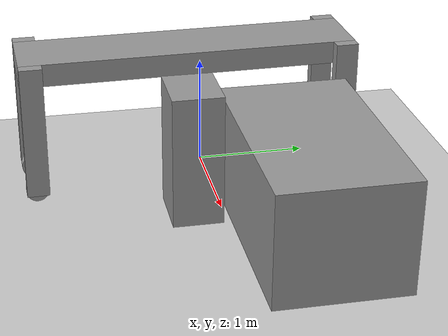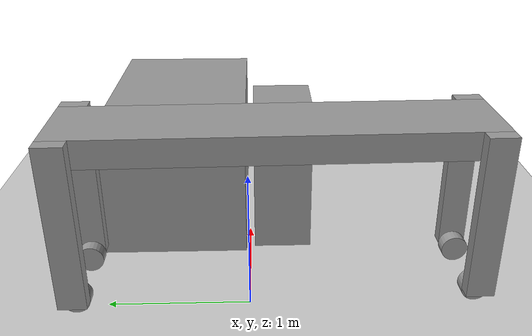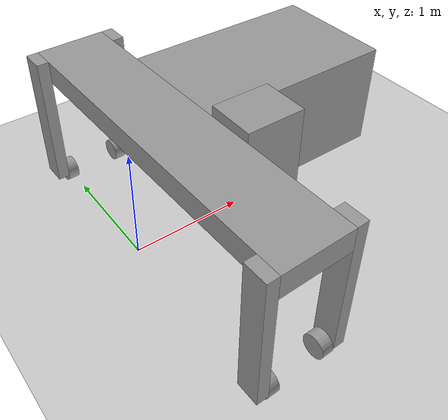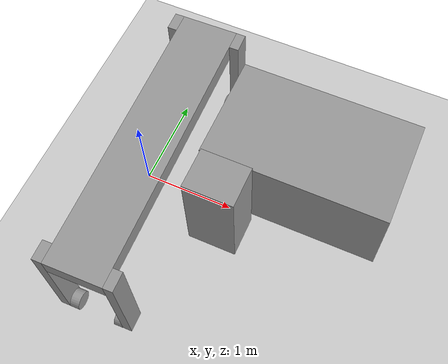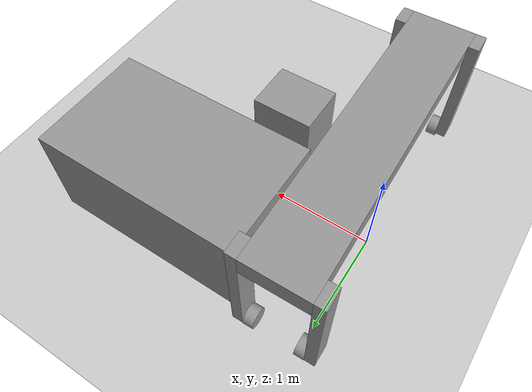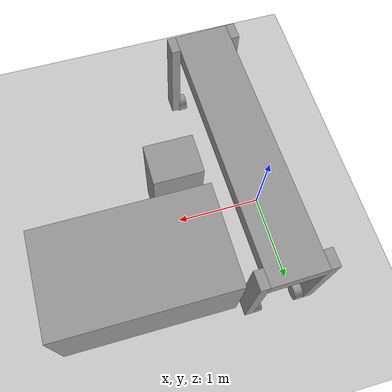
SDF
<sdf version="1.7">
 <world name="default">
  <model name="ground_plane">
   <static>1</static>
   <link name="link">
    <collision name="collision">
     <geometry><plane><normal>0 0 1</normal><size>100 100</size></plane></geometry>
     <surface>
      <contact><collide_bitmask>65535</collide_bitmask></contact>
      <friction><ode><mu>100</mu><mu2>50</mu2></ode></friction>
     </surface>
    </collision>
    <visual name="visual">
     <cast_shadows>0</cast_shadows>
     <geometry><plane><normal>0 0 1</normal><size>100 100</size></plane></geometry>
     <material>
      <script><uri>file://media/materials/scripts/gazebo.material</uri><name>Gazebo/Grey</name></script>
     </material>
    </visual>
   </link>
  </model>
  <model name="trolley">
   <link name="link_0">
    <inertial>
     <mass>1</mass>
     <inertia>
      <ixx>0.166667</ixx>
      <ixy>0</ixy>
      <ixz>0</ixz>
      <iyy>0.166667</iyy>
      <iyz>0</iyz>
      <izz>0.166667</izz>
     </inertia>
    </inertial>
    <pose>-0.120868 0.130124 0.533333 0 -0 0</pose>
    <visual name="visual">
     <geometry><box><size>0.6 3 0.2</size></box></geometry>
     <material>
      <lighting>1</lighting>
      <script><uri>file://media/materials/scripts/gazebo.material</uri><name>Gazebo/Grey</name></script>
      <shader type="pixel"><normal_map>__default__</normal_map></shader>
      <ambient>0.3 0.3 0.3 1</ambient>
      <diffuse>0.7 0.7 0.7 1</diffuse>
      <specular>0.01 0.01 0.01 1</specular>
      <emissive>0 0 0 1</emissive>
     </material>
    </visual>
    <collision name="collision">
     <geometry><box><size>0.6 3 0.2</size></box></geometry>
     <surface>
      <friction>
       <ode><mu>1</mu><mu2>1</mu2><fdir1>0 0 0</fdir1><slip1>0</slip1><slip2>0</slip2></ode>
       <torsional>
        <coefficient>1</coefficient>
        <patch_radius>0</patch_radius>
        <surface_radius>0</surface_radius>
        <use_patch_radius>1</use_patch_radius>
        <ode><slip>0</slip></ode>
       </torsional>
      </friction>
      <bounce><restitution_coefficient>0</restitution_coefficient><threshold>1e+06</threshold></bounce>
      <contact>
       <collide_without_contact>0</collide_without_contact>
       <collide_without_contact_bitmask>1</collide_without_contact_bitmask>
       <collide_bitmask>1</collide_bitmask>
       <ode>
        <soft_cfm>0</soft_cfm>
        <soft_erp>0.2</soft_erp>
        <kp>1e+13</kp>
        <kd>1</kd>
        <max_vel>0.01</max_vel>
        <min_depth>0</min_depth>
       </ode>
       <bullet>
        <split_impulse>1</split_impulse>
        <split_impulse_penetration_threshold>-0.01</split_impulse_penetration_threshold>
        <soft_cfm>0</soft_cfm>
        <soft_erp>0.2</soft_erp>
        <kp>1e+13</kp>
        <kd>1</kd>
       </bullet>
      </contact>
     </surface>
    </collision>
   </link>
   <link name="link_1">
    <inertial>
     <mass>1</mass>
     <inertia>
      <ixx>0.166667</ixx>
      <ixy>0</ixy>
      <ixz>0</ixz>
      <iyy>0.166667</iyy>
      <iyz>0</iyz>
      <izz>0.166667</izz>
     </inertia>
    </inertial>
    <pose>0.229136 -1.26987 0.033333 0 -0 0</pose>
    <visual name="visual">
     <geometry><box><size>0.1 0.2 1.2</size></box></geometry>
     <material>
      <lighting>1</lighting>
      <script><uri>file://media/materials/scripts/gazebo.material</uri><name>Gazebo/Grey</name></script>
      <shader type="pixel"><normal_map>__default__</normal_map></shader>
      <ambient>0.3 0.3 0.3 1</ambient>
      <diffuse>0.7 0.7 0.7 1</diffuse>
      <specular>0.01 0.01 0.01 1</specular>
      <emissive>0 0 0 1</emissive>
     </material>
    </visual>
    <collision name="collision">
     <geometry><box><size>0.1 0.2 1.2</size></box></geometry>
     <surface>
      <friction>
       <ode><mu>1</mu><mu2>1</mu2><fdir1>0 0 0</fdir1><slip1>0</slip1><slip2>0</slip2></ode>
       <torsional>
        <coefficient>1</coefficient>
        <patch_radius>0</patch_radius>
        <surface_radius>0</surface_radius>
        <use_patch_radius>1</use_patch_radius>
        <ode><slip>0</slip></ode>
       </torsional>
      </friction>
      <bounce><restitution_coefficient>0</restitution_coefficient><threshold>1e+06</threshold></bounce>
      <contact>
       <collide_without_contact>0</collide_without_contact>
       <collide_without_contact_bitmask>1</collide_without_contact_bitmask>
       <collide_bitmask>1</collide_bitmask>
       <ode>
        <soft_cfm>0</soft_cfm>
        <soft_erp>0.2</soft_erp>
        <kp>1e+13</kp>
        <kd>1</kd>
        <max_vel>0.01</max_vel>
        <min_depth>0</min_depth>
       </ode>
       <bullet>
        <split_impulse>1</split_impulse>
        <split_impulse_penetration_threshold>-0.01</split_impulse_penetration_threshold>
        <soft_cfm>0</soft_cfm>
        <soft_erp>0.2</soft_erp>
        <kp>1e+13</kp>
        <kd>1</kd>
       </bullet>
      </contact>
     </surface>
    </collision>
   </link>
   <link name="link_1_clone">
    <inertial>
     <mass>1</mass>
     <inertia>
      <ixx>0.166667</ixx>
      <ixy>0</ixy>
      <ixz>0</ixz>
      <iyy>0.166667</iyy>
      <iyz>0</iyz>
      <izz>0.166667</izz>
     </inertia>
    </inertial>
    <pose>-0.470868 1.53012 0.033333 0 -0 0</pose>
    <visual name="visual">
     <geometry><box><size>0.1 0.2 1.2</size></box></geometry>
     <material>
      <lighting>1</lighting>
      <script><uri>file://media/materials/scripts/gazebo.material</uri><name>Gazebo/Grey</name></script>
      <shader type="pixel"><normal_map>__default__</normal_map></shader>
      <ambient>0.3 0.3 0.3 1</ambient>
      <diffuse>0.7 0.7 0.7 1</diffuse>
      <specular>0.01 0.01 0.01 1</specular>
      <emissive>0 0 0 1</emissive>
     </material>
    </visual>
    <collision name="collision">
     <geometry><box><size>0.1 0.2 1.2</size></box></geometry>
     <surface>
      <friction>
       <ode><mu>1</mu><mu2>1</mu2><fdir1>0 0 0</fdir1><slip1>0</slip1><slip2>0</slip2></ode>
       <torsional>
        <coefficient>1</coefficient>
        <patch_radius>0</patch_radius>
        <surface_radius>0</surface_radius>
        <use_patch_radius>1</use_patch_radius>
        <ode><slip>0</slip></ode>
       </torsional>
      </friction>
      <bounce><restitution_coefficient>0</restitution_coefficient><threshold>1e+06</threshold></bounce>
      <contact>
       <collide_without_contact>0</collide_without_contact>
       <collide_without_contact_bitmask>1</collide_without_contact_bitmask>
       <collide_bitmask>1</collide_bitmask>
       <ode>
        <soft_cfm>0</soft_cfm>
        <soft_erp>0.2</soft_erp>
        <kp>1e+13</kp>
        <kd>1</kd>
        <max_vel>0.01</max_vel>
        <min_depth>0</min_depth>
       </ode>
       <bullet>
        <split_impulse>1</split_impulse>
        <split_impulse_penetration_threshold>-0.01</split_impulse_penetration_threshold>
        <soft_cfm>0</soft_cfm>
        <soft_erp>0.2</soft_erp>
        <kp>1e+13</kp>
        <kd>1</kd>
       </bullet>
      </contact>
     </surface>
    </collision>
   </link>
   <link name="link_1_clone_0">
    <inertial>
     <mass>1</mass>
     <inertia>
      <ixx>0.166667</ixx>
      <ixy>0</ixy>
      <ixz>0</ixz>
      <iyy>0.166667</iyy>
      <iyz>0</iyz>
      <izz>0.166667</izz>
     </inertia>
    </inertial>
    <pose>-0.470868 -1.26987 0.033333 0 -0 0</pose>
    <visual name="visual">
     <geometry><box><size>0.1 0.2 1.2</size></box></geometry>
     <material>
      <lighting>1</lighting>
      <script><uri>file://media/materials/scripts/gazebo.material</uri><name>Gazebo/Grey</name></script>
      <shader type="pixel"><normal_map>__default__</normal_map></shader>
      <ambient>0.3 0.3 0.3 1</ambient>
      <diffuse>0.7 0.7 0.7 1</diffuse>
      <specular>0.01 0.01 0.01 1</specular>
      <emissive>0 0 0 1</emissive>
     </material>
    </visual>
    <collision name="collision">
     <geometry><box><size>0.1 0.2 1.2</size></box></geometry>
     <surface>
      <friction>
       <ode><mu>1</mu><mu2>1</mu2><fdir1>0 0 0</fdir1><slip1>0</slip1><slip2>0</slip2></ode>
       <torsional>
        <coefficient>1</coefficient>
        <patch_radius>0</patch_radius>
        <surface_radius>0</surface_radius>
        <use_patch_radius>1</use_patch_radius>
        <ode><slip>0</slip></ode>
       </torsional>
      </friction>
      <bounce><restitution_coefficient>0</restitution_coefficient><threshold>1e+06</threshold></bounce>
      <contact>
       <collide_without_contact>0</collide_without_contact>
       <collide_without_contact_bitmask>1</collide_without_contact_bitmask>
       <collide_bitmask>1</collide_bitmask>
       <ode>
        <soft_cfm>0</soft_cfm>
        <soft_erp>0.2</soft_erp>
        <kp>1e+13</kp>
        <kd>1</kd>
        <max_vel>0.01</max_vel>
        <min_depth>0</min_depth>
       </ode>
       <bullet>
        <split_impulse>1</split_impulse>
        <split_impulse_penetration_threshold>-0.01</split_impulse_penetration_threshold>
        <soft_cfm>0</soft_cfm>
        <soft_erp>0.2</soft_erp>
        <kp>1e+13</kp>
        <kd>1</kd>
       </bullet>
      </contact>
     </surface>
    </collision>
   </link>
   <link name="link_1_clone_1">
    <inertial>
     <mass>1</mass>
     <inertia>
      <ixx>0.166667</ixx>
      <ixy>0</ixy>
      <ixz>0</ixz>
      <iyy>0.166667</iyy>
      <iyz>0</iyz>
      <izz>0.166667</izz>
     </inertia>
    </inertial>
    <pose>0.229136 1.53012 0.033333 0 -0 0</pose>
    <visual name="visual">
     <geometry><box><size>0.1 0.2 1.2</size></box></geometry>
     <material>
      <lighting>1</lighting>
      <script><uri>file://media/materials/scripts/gazebo.material</uri><name>Gazebo/Grey</name></script>
      <shader type="pixel"><normal_map>__default__</normal_map></shader>
      <ambient>0.3 0.3 0.3 1</ambient>
      <diffuse>0.7 0.7 0.7 1</diffuse>
      <specular>0.01 0.01 0.01 1</specular>
      <emissive>0 0 0 1</emissive>
     </material>
    </visual>
    <collision name="collision">
     <geometry><box><size>0.1 0.2 1.2</size></box></geometry>
     <surface>
      <friction>
       <ode><mu>1</mu><mu2>1</mu2><fdir1>0 0 0</fdir1><slip1>0</slip1><slip2>0</slip2></ode>
       <torsional>
        <coefficient>1</coefficient>
        <patch_radius>0</patch_radius>
        <surface_radius>0</surface_radius>
        <use_patch_radius>1</use_patch_radius>
        <ode><slip>0</slip></ode>
       </torsional>
      </friction>
      <bounce><restitution_coefficient>0</restitution_coefficient><threshold>1e+06</threshold></bounce>
      <contact>
       <collide_without_contact>0</collide_without_contact>
       <collide_without_contact_bitmask>1</collide_without_contact_bitmask>
       <collide_bitmask>1</collide_bitmask>
       <ode>
        <soft_cfm>0</soft_cfm>
        <soft_erp>0.2</soft_erp>
        <kp>1e+13</kp>
        <kd>1</kd>
        <max_vel>0.01</max_vel>
        <min_depth>0</min_depth>
       </ode>
       <bullet>
        <split_impulse>1</split_impulse>
        <split_impulse_penetration_threshold>-0.01</split_impulse_penetration_threshold>
        <soft_cfm>0</soft_cfm>
        <soft_erp>0.2</soft_erp>
        <kp>1e+13</kp>
        <kd>1</kd>
       </bullet>
      </contact>
     </surface>
    </collision>
   </link>
   <link name="link_2">
    <inertial>
     <mass>1</mass>
     <inertia><ixx>0.145833</ixx><ixy>0</ixy><ixz>0</ixz><iyy>0.145833</iyy><iyz>0</iyz><izz>0.125</izz></inertia>
    </inertial>
    <pose>-0.370868 -1.26987 -0.566667 0 1.57 0</pose>
    <visual name="visual">
     <geometry><cylinder><radius>0.1</radius><length>0.1</length></cylinder></geometry>
     <material>
      <lighting>1</lighting>
      <script><uri>file://media/materials/scripts/gazebo.material</uri><name>Gazebo/Grey</name></script>
      <shader type="pixel"><normal_map>__default__</normal_map></shader>
      <ambient>0.3 0.3 0.3 1</ambient>
      <diffuse>0.7 0.7 0.7 1</diffuse>
      <specular>0.01 0.01 0.01 1</specular>
      <emissive>0 0 0 1</emissive>
     </material>
    </visual>
    <collision name="collision">
     <geometry><cylinder><radius>0.1</radius><length>0.1</length></cylinder></geometry>
     <surface>
      <friction>
       <ode><mu>1</mu><mu2>1</mu2><fdir1>0 0 0</fdir1><slip1>0</slip1><slip2>0</slip2></ode>
       <torsional>
        <coefficient>1</coefficient>
        <patch_radius>0</patch_radius>
        <surface_radius>0</surface_radius>
        <use_patch_radius>1</use_patch_radius>
        <ode><slip>0</slip></ode>
       </torsional>
      </friction>
      <bounce><restitution_coefficient>0</restitution_coefficient><threshold>1e+06</threshold></bounce>
      <contact>
       <collide_without_contact>0</collide_without_contact>
       <collide_without_contact_bitmask>1</collide_without_contact_bitmask>
       <collide_bitmask>1</collide_bitmask>
       <ode>
        <soft_cfm>0</soft_cfm>
        <soft_erp>0.2</soft_erp>
        <kp>1e+13</kp>
        <kd>1</kd>
        <max_vel>0.01</max_vel>
        <min_depth>0</min_depth>
       </ode>
       <bullet>
        <split_impulse>1</split_impulse>
        <split_impulse_penetration_threshold>-0.01</split_impulse_penetration_threshold>
        <soft_cfm>0</soft_cfm>
        <soft_erp>0.2</soft_erp>
        <kp>1e+13</kp>
        <kd>1</kd>
       </bullet>
      </contact>
     </surface>
    </collision>
   </link>
   <link name="link_2_clone">
    <inertial>
     <mass>1</mass>
     <inertia><ixx>0.145833</ixx><ixy>0</ixy><ixz>0</ixz><iyy>0.145833</iyy><iyz>0</iyz><izz>0.125</izz></inertia>
    </inertial>
    <pose>-0.370868 1.53012 -0.566667 0 1.57 0</pose>
    <visual name="visual">
     <geometry><cylinder><radius>0.1</radius><length>0.1</length></cylinder></geometry>
     <material>
      <lighting>1</lighting>
      <script><uri>file://media/materials/scripts/gazebo.material</uri><name>Gazebo/Grey</name></script>
      <shader type="pixel"><normal_map>__default__</normal_map></shader>
      <ambient>0.3 0.3 0.3 1</ambient>
      <diffuse>0.7 0.7 0.7 1</diffuse>
      <specular>0.01 0.01 0.01 1</specular>
      <emissive>0 0 0 1</emissive>
     </material>
    </visual>
    <collision name="collision">
     <geometry><cylinder><radius>0.1</radius><length>0.1</length></cylinder></geometry>
     <surface>
      <friction>
       <ode><mu>1</mu><mu2>1</mu2><fdir1>0 0 0</fdir1><slip1>0</slip1><slip2>0</slip2></ode>
       <torsional>
        <coefficient>1</coefficient>
        <patch_radius>0</patch_radius>
        <surface_radius>0</surface_radius>
        <use_patch_radius>1</use_patch_radius>
        <ode><slip>0</slip></ode>
       </torsional>
      </friction>
      <bounce><restitution_coefficient>0</restitution_coefficient><threshold>1e+06</threshold></bounce>
      <contact>
       <collide_without_contact>0</collide_without_contact>
       <collide_without_contact_bitmask>1</collide_without_contact_bitmask>
       <collide_bitmask>1</collide_bitmask>
       <ode>
        <soft_cfm>0</soft_cfm>
        <soft_erp>0.2</soft_erp>
        <kp>1e+13</kp>
        <kd>1</kd>
        <max_vel>0.01</max_vel>
        <min_depth>0</min_depth>
       </ode>
       <bullet>
        <split_impulse>1</split_impulse>
        <split_impulse_penetration_threshold>-0.01</split_impulse_penetration_threshold>
        <soft_cfm>0</soft_cfm>
        <soft_erp>0.2</soft_erp>
        <kp>1e+13</kp>
        <kd>1</kd>
       </bullet>
      </contact>
     </surface>
    </collision>
   </link>
   <link name="link_2_clone_0">
    <inertial>
     <mass>1</mass>
     <inertia><ixx>0.145833</ixx><ixy>0</ixy><ixz>0</ixz><iyy>0.145833</iyy><iyz>0</iyz><izz>0.125</izz></inertia>
    </inertial>
    <pose>0.129132 1.53012 -0.566667 0 1.57 0</pose>
    <visual name="visual">
     <geometry><cylinder><radius>0.1</radius><length>0.1</length></cylinder></geometry>
     <material>
      <lighting>1</lighting>
      <script><uri>file://media/materials/scripts/gazebo.material</uri><name>Gazebo/Grey</name></script>
      <shader type="pixel"><normal_map>__default__</normal_map></shader>
      <ambient>0.3 0.3 0.3 1</ambient>
      <diffuse>0.7 0.7 0.7 1</diffuse>
      <specular>0.01 0.01 0.01 1</specular>
      <emissive>0 0 0 1</emissive>
     </material>
    </visual>
    <collision name="collision">
     <geometry><cylinder><radius>0.1</radius><length>0.1</length></cylinder></geometry>
     <surface>
      <friction>
       <ode><mu>1</mu><mu2>1</mu2><fdir1>0 0 0</fdir1><slip1>0</slip1><slip2>0</slip2></ode>
       <torsional>
        <coefficient>1</coefficient>
        <patch_radius>0</patch_radius>
        <surface_radius>0</surface_radius>
        <use_patch_radius>1</use_patch_radius>
        <ode><slip>0</slip></ode>
       </torsional>
      </friction>
      <bounce><restitution_coefficient>0</restitution_coefficient><threshold>1e+06</threshold></bounce>
      <contact>
       <collide_without_contact>0</collide_without_contact>
       <collide_without_contact_bitmask>1</collide_without_contact_bitmask>
       <collide_bitmask>1</collide_bitmask>
       <ode>
        <soft_cfm>0</soft_cfm>
        <soft_erp>0.2</soft_erp>
        <kp>1e+13</kp>
        <kd>1</kd>
        <max_vel>0.01</max_vel>
        <min_depth>0</min_depth>
       </ode>
       <bullet>
        <split_impulse>1</split_impulse>
        <split_impulse_penetration_threshold>-0.01</split_impulse_penetration_threshold>
        <soft_cfm>0</soft_cfm>
        <soft_erp>0.2</soft_erp>
        <kp>1e+13</kp>
        <kd>1</kd>
       </bullet>
      </contact>
     </surface>
    </collision>
   </link>
   <link name="link_2_clone_1">
    <inertial>
     <mass>1</mass>
     <inertia><ixx>0.145833</ixx><ixy>0</ixy><ixz>0</ixz><iyy>0.145833</iyy><iyz>0</iyz><izz>0.125</izz></inertia>
    </inertial>
    <pose>0.129136 -1.26987 -0.566667 0 1.57 0</pose>
    <visual name="visual">
     <geometry><cylinder><radius>0.1</radius><length>0.1</length></cylinder></geometry>
     <material>
      <lighting>1</lighting>
      <script><uri>file://media/materials/scripts/gazebo.material</uri><name>Gazebo/Grey</name></script>
      <shader type="pixel"><normal_map>__default__</normal_map></shader>
      <ambient>0.3 0.3 0.3 1</ambient>
      <diffuse>0.7 0.7 0.7 1</diffuse>
      <specular>0.01 0.01 0.01 1</specular>
      <emissive>0 0 0 1</emissive>
     </material>
    </visual>
    <collision name="collision">
     <geometry><cylinder><radius>0.1</radius><length>0.1</length></cylinder></geometry>
     <surface>
      <friction>
       <ode><mu>1</mu><mu2>1</mu2><fdir1>0 0 0</fdir1><slip1>0</slip1><slip2>0</slip2></ode>
       <torsional>
        <coefficient>1</coefficient>
        <patch_radius>0</patch_radius>
        <surface_radius>0</surface_radius>
        <use_patch_radius>1</use_patch_radius>
        <ode><slip>0</slip></ode>
       </torsional>
      </friction>
      <bounce><restitution_coefficient>0</restitution_coefficient><threshold>1e+06</threshold></bounce>
      <contact>
       <collide_without_contact>0</collide_without_contact>
       <collide_without_contact_bitmask>1</collide_without_contact_bitmask>
       <collide_bitmask>1</collide_bitmask>
       <ode>
        <soft_cfm>0</soft_cfm>
        <soft_erp>0.2</soft_erp>
        <kp>1e+13</kp>
        <kd>1</kd>
        <max_vel>0.01</max_vel>
        <min_depth>0</min_depth>
       </ode>
       <bullet>
        <split_impulse>1</split_impulse>
        <split_impulse_penetration_threshold>-0.01</split_impulse_penetration_threshold>
        <soft_cfm>0</soft_cfm>
        <soft_erp>0.2</soft_erp>
        <kp>1e+13</kp>
        <kd>1</kd>
       </bullet>
      </contact>
     </surface>
    </collision>
   </link>
   <joint name="link_0_JOINT_0" type="revolute">
    <parent>link_0</parent>
    <child>link_1_clone</child>
    <axis>
     <xyz>1 0 0</xyz>
     <limit>
      <lower>-1.79769e+308</lower>
      <upper>1.79769e+308</upper>
      <effort>-1</effort>
      <velocity>-1</velocity>
     </limit>
     <dynamics>
      <spring_reference>0</spring_reference>
      <spring_stiffness>0</spring_stiffness>
      <damping>0</damping>
     </dynamics>
    </axis>
    <physics>
     <ode><limit><cfm>0</cfm><erp>0.2</erp></limit><suspension><cfm>0</cfm><erp>0.2</erp></suspension></ode>
    </physics>
   </joint>
   <joint name="link_0_JOINT_1" type="revolute">
    <parent>link_0</parent>
    <child>link_1_clone_1</child>
    <axis>
     <xyz>1 0 0</xyz>
     <limit>
      <lower>-1.79769e+308</lower>
      <upper>1.79769e+308</upper>
      <effort>-1</effort>
      <velocity>-1</velocity>
     </limit>
     <dynamics>
      <spring_reference>0</spring_reference>
      <spring_stiffness>0</spring_stiffness>
      <damping>0</damping>
     </dynamics>
    </axis>
    <physics>
     <ode><limit><cfm>0</cfm><erp>0.2</erp></limit><suspension><cfm>0</cfm><erp>0.2</erp></suspension></ode>
    </physics>
   </joint>
   <joint name="link_0_JOINT_2" type="revolute">
    <parent>link_0</parent>
    <child>link_1_clone_1</child>
    <axis>
     <xyz>1 0 0</xyz>
     <limit>
      <lower>-1.79769e+308</lower>
      <upper>1.79769e+308</upper>
      <effort>-1</effort>
      <velocity>-1</velocity>
     </limit>
     <dynamics>
      <spring_reference>0</spring_reference>
      <spring_stiffness>0</spring_stiffness>
      <damping>0</damping>
     </dynamics>
    </axis>
    <physics>
     <ode><limit><cfm>0</cfm><erp>0.2</erp></limit><suspension><cfm>0</cfm><erp>0.2</erp></suspension></ode>
    </physics>
   </joint>
   <joint name="link_0_JOINT_3" type="fixed">
    <parent>link_0</parent>
    <child>link_1_clone_1</child>
    <pose>0 0 0 -0.03 0 0</pose>
    <physics>
     <ode><limit><cfm>0</cfm><erp>0.2</erp></limit><suspension><cfm>0</cfm><erp>0.2</erp></suspension></ode>
    </physics>
   </joint>
   <joint name="link_0_JOINT_4" type="fixed">
    <parent>link_0</parent>
    <child>link_1_clone</child>
    <pose>0 0 0 0 -0.04 0</pose>
    <physics>
     <ode><limit><cfm>0</cfm><erp>0.2</erp></limit><suspension><cfm>0</cfm><erp>0.2</erp></suspension></ode>
    </physics>
   </joint>
   <joint name="link_0_JOINT_5" type="fixed">
    <parent>link_0</parent>
    <child>link_1</child>
    <physics>
     <ode><limit><cfm>0</cfm><erp>0.2</erp></limit><suspension><cfm>0</cfm><erp>0.2</erp></suspension></ode>
    </physics>
   </joint>
   <joint name="link_0_JOINT_6" type="fixed">
    <parent>link_0</parent>
    <child>link_1_clone_0</child>
    <physics>
     <ode><limit><cfm>0</cfm><erp>0.2</erp></limit><suspension><cfm>0</cfm><erp>0.2</erp></suspension></ode>
    </physics>
   </joint>
   <joint name="link_1_JOINT_12" type="revolute">
    <parent>link_1</parent>
    <child>link_2_clone_1</child>
    <axis>
     <xyz>1 0 0</xyz>
     <limit>
      <lower>-1.79769e+308</lower>
      <upper>1.79769e+308</upper>
      <effort>-1</effort>
      <velocity>-1</velocity>
     </limit>
     <dynamics>
      <spring_reference>0</spring_reference>
      <spring_stiffness>0</spring_stiffness>
      <damping>0</damping>
     </dynamics>
    </axis>
    <physics>
     <ode><limit><cfm>0</cfm><erp>0.2</erp></limit><suspension><cfm>0</cfm><erp>0.2</erp></suspension></ode>
    </physics>
   </joint>
   <joint name="link_1_clone_0_JOINT_13" type="revolute">
    <parent>link_1_clone_0</parent>
    <child>link_2</child>
    <axis>
     <xyz>1 0 0</xyz>
     <limit>
      <lower>-1.79769e+308</lower>
      <upper>1.79769e+308</upper>
      <effort>-1</effort>
      <velocity>-1</velocity>
     </limit>
     <dynamics>
      <spring_reference>0</spring_reference>
      <spring_stiffness>0</spring_stiffness>
      <damping>0</damping>
     </dynamics>
    </axis>
    <physics>
     <ode><limit><cfm>0</cfm><erp>0.2</erp></limit><suspension><cfm>0</cfm><erp>0.2</erp></suspension></ode>
    </physics>
   </joint>
   <joint name="link_1_clone_1_JOINT_10" type="revolute">
    <parent>link_1_clone_1</parent>
    <child>link_2_clone_0</child>
    <axis>
     <xyz>1 0 0</xyz>
     <limit>
      <lower>-1.79769e+308</lower>
      <upper>1.79769e+308</upper>
      <effort>-1</effort>
      <velocity>-1</velocity>
     </limit>
     <dynamics>
      <spring_reference>0</spring_reference>
      <spring_stiffness>0</spring_stiffness>
      <damping>0</damping>
     </dynamics>
    </axis>
    <physics>
     <ode><limit><cfm>0</cfm><erp>0.2</erp></limit><suspension><cfm>0</cfm><erp>0.2</erp></suspension></ode>
    </physics>
   </joint>
   <joint name="link_1_clone_1_JOINT_11" type="revolute">
    <parent>link_1_clone_1</parent>
    <child>link_2_clone_0</child>
    <axis>
     <xyz>1 0 0</xyz>
     <limit>
      <lower>-1.79769e+308</lower>
      <upper>1.79769e+308</upper>
      <effort>-1</effort>
      <velocity>-1</velocity>
     </limit>
     <dynamics>
      <spring_reference>0</spring_reference>
      <spring_stiffness>0</spring_stiffness>
      <damping>0</damping>
     </dynamics>
    </axis>
    <physics>
     <ode><limit><cfm>0</cfm><erp>0.2</erp></limit><suspension><cfm>0</cfm><erp>0.2</erp></suspension></ode>
    </physics>
   </joint>
   <joint name="link_1_clone_1_JOINT_7" type="revolute">
    <parent>link_1_clone_1</parent>
    <child>link_2_clone_0</child>
    <axis>
     <xyz>1 0 0</xyz>
     <limit>
      <lower>-1.79769e+308</lower>
      <upper>1.79769e+308</upper>
      <effort>-1</effort>
      <velocity>-1</velocity>
     </limit>
     <dynamics>
      <spring_reference>0</spring_reference>
      <spring_stiffness>0</spring_stiffness>
      <damping>0</damping>
     </dynamics>
    </axis>
    <physics>
     <ode><limit><cfm>0</cfm><erp>0.2</erp></limit><suspension><cfm>0</cfm><erp>0.2</erp></suspension></ode>
    </physics>
   </joint>
   <joint name="link_1_clone_1_JOINT_9" type="revolute">
    <parent>link_1_clone_1</parent>
    <child>link_2_clone_0</child>
    <axis>
     <xyz>1 0 0</xyz>
     <limit>
      <lower>-1.79769e+308</lower>
      <upper>1.79769e+308</upper>
      <effort>-1</effort>
      <velocity>-1</velocity>
     </limit>
     <dynamics>
      <spring_reference>0</spring_reference>
      <spring_stiffness>0</spring_stiffness>
      <damping>0</damping>
     </dynamics>
    </axis>
    <physics>
     <ode><limit><cfm>0</cfm><erp>0.2</erp></limit><suspension><cfm>0</cfm><erp>0.2</erp></suspension></ode>
    </physics>
   </joint>
   <joint name="link_1_clone_JOINT_14" type="revolute">
    <parent>link_1_clone</parent>
    <child>link_2_clone</child>
    <axis>
     <xyz>1 0 0</xyz>
     <limit>
      <lower>-1.79769e+308</lower>
      <upper>1.79769e+308</upper>
      <effort>-1</effort>
      <velocity>-1</velocity>
     </limit>
     <dynamics>
      <spring_reference>0</spring_reference>
      <spring_stiffness>0</spring_stiffness>
      <damping>0</damping>
     </dynamics>
    </axis>
    <physics>
     <ode><limit><cfm>0</cfm><erp>0.2</erp></limit><suspension><cfm>0</cfm><erp>0.2</erp></suspension></ode>
    </physics>
   </joint>
   <static>0</static>
   <pose>0.37378 -0.318667 0.666677 3e-06 -9e-06 0.022182</pose>
  </model>
  <model name="unit_box">
   <pose>1.00511 -0.257962 0.590448 -3e-06 4e-06 -0.000806</pose>
   <link name="link">
    <inertial>
     <mass>1</mass>
     <inertia>
      <ixx>0.166667</ixx>
      <ixy>0</ixy>
      <ixz>0</ixz>
      <iyy>0.166667</iyy>
      <iyz>0</iyz>
      <izz>0.166667</izz>
     </inertia>
    </inertial>
    <collision name="collision"><geometry><box><size>0.544032 0.446893 1.1809</size></box></geometry></collision>
    <visual name="visual">
     <geometry><box><size>0.544032 0.446893 1.1809</size></box></geometry>
     <material>
      <script><name>Gazebo/Grey</name><uri>file://media/materials/scripts/gazebo.material</uri></script>
     </material>
    </visual>
   </link>
  </model>
  <model name="place_basement">
   <link name="link_0">
    <inertial>
     <mass>2.31383</mass>
     <inertia><ixx>0.452195</ixx><ixy>0</ixy><ixz>0</ixz><iyy>0.960239</iyy><iyz>0</iyz><izz>1.0268</izz></inertia>
    </inertial>
    <visual name="visual">
     <geometry><box><size>1.99499 1.15982 1</size></box></geometry>
     <material>
      <lighting>1</lighting>
      <script><uri>file://media/materials/scripts/gazebo.material</uri><name>Gazebo/Grey</name></script>
      <shader type="pixel"/>
     </material>
    </visual>
    <collision name="collision">
     <geometry><box><size>1.99499 1.15982 1</size></box></geometry>
     <surface>
      <friction>
       <ode><mu>1</mu><mu2>1</mu2><fdir1>0 0 0</fdir1><slip1>0</slip1><slip2>0</slip2></ode>
       <torsional>
        <coefficient>1</coefficient>
        <patch_radius>0</patch_radius>
        <surface_radius>0</surface_radius>
        <use_patch_radius>1</use_patch_radius>
        <ode><slip>0</slip></ode>
       </torsional>
      </friction>
      <bounce><restitution_coefficient>0</restitution_coefficient><threshold>1e+06</threshold></bounce>
      <contact>
       <collide_without_contact>0</collide_without_contact>
       <collide_without_contact_bitmask>1</collide_without_contact_bitmask>
       <collide_bitmask>1</collide_bitmask>
       <ode>
        <soft_cfm>0</soft_cfm>
        <soft_erp>0.2</soft_erp>
        <kp>1e+13</kp>
        <kd>1</kd>
        <max_vel>0.01</max_vel>
        <min_depth>0</min_depth>
       </ode>
       <bullet>
        <split_impulse>1</split_impulse>
        <split_impulse_penetration_threshold>-0.01</split_impulse_penetration_threshold>
        <soft_cfm>0</soft_cfm>
        <soft_erp>0.2</soft_erp>
        <kp>1e+13</kp>
        <kd>1</kd>
       </bullet>
      </contact>
     </surface>
    </collision>
   </link>
   <static>0</static>
   <pose>1.66573 0.612817 0.5 0 -0 0</pose>
  </model>
 </world>
</sdf>
